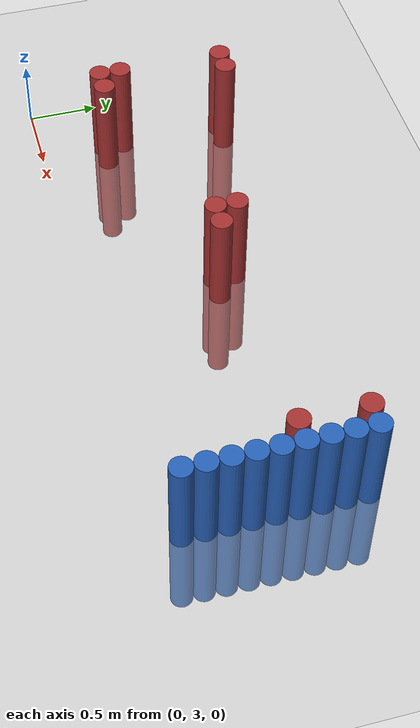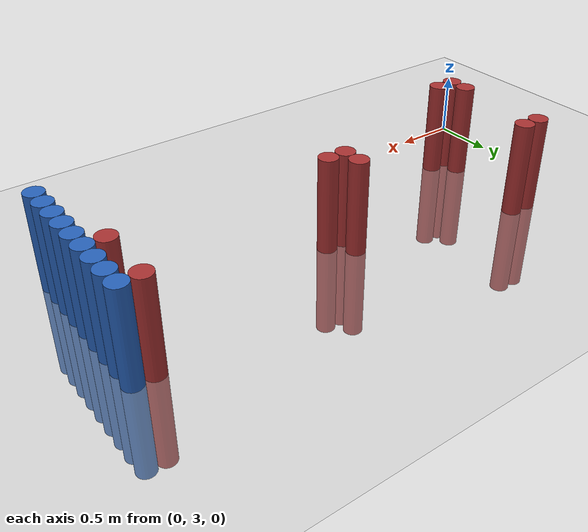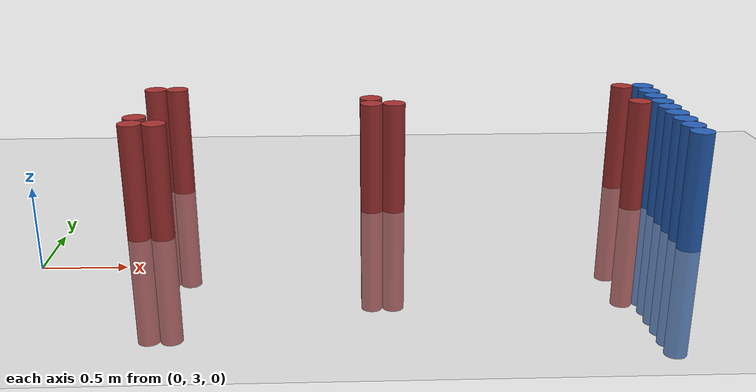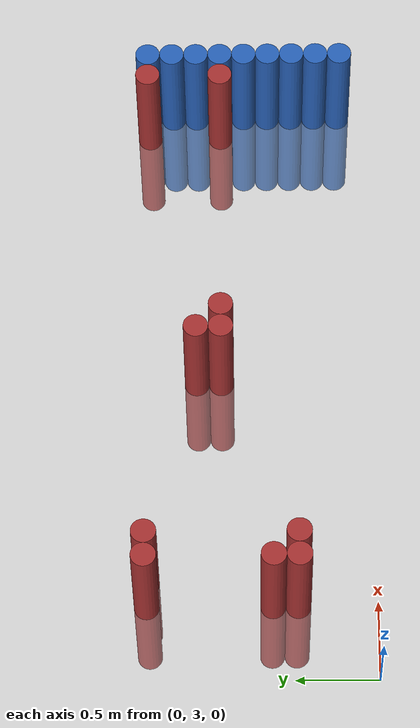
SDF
<sdf version="1.6">
 <world name="default">
  <model name="ground_plane">
   <static>1</static>
   <link name="link">
    <collision name="collision">
     <geometry><plane><normal>0 0 1</normal><size>100 100</size></plane></geometry>
     <surface><friction><ode><mu>100</mu><mu2>50</mu2></ode></friction></surface>
    </collision>
    <visual name="visual">
     <cast_shadows>0</cast_shadows>
     <geometry><plane><normal>0 0 1</normal><size>100 100</size></plane></geometry>
     <material>
      <script><uri>file://media/materials/scripts/gazebo.material</uri><name>Gazebo/Grey</name></script>
     </material>
    </visual>
   </link>
  </model>
  <model name="unit_cylinder_158">
   <static>1</static>
   <pose>3.925000 3.325000 0.000000 0.000000 0.000000 0.000000</pose>
   <link name="link">
    <inertial>
     <mass>1</mass>
     <inertia><ixx>0.145833</ixx><ixy>0</ixy><ixz>0</ixz><iyy>0.145833</iyy><iyz>0</iyz><izz>0.125</izz></inertia>
    </inertial>
    <collision name="collision">
     <geometry><cylinder><radius>0.075000</radius><length>1.5</length></cylinder></geometry>
    </collision>
    <visual name="visual">
     <geometry><cylinder><radius>0.075000</radius><length>1.5</length></cylinder></geometry>
     <material>
      <ambient>0.152000 0.379000 0.720000 1</ambient>
      <diffuse>0.152000 0.379000 0.720000 1</diffuse>
     </material>
     <material>
      <script><name>Gazebo/Grey</name><uri>file://media/materials/scripts/gazebo.material</uri></script>
     </material>
    </visual>
   </link>
  </model>
  <model name="unit_cylinder_160">
   <static>1</static>
   <pose>3.925000 3.475000 0.000000 0.000000 0.000000 0.000000</pose>
   <link name="link">
    <inertial>
     <mass>1</mass>
     <inertia><ixx>0.145833</ixx><ixy>0</ixy><ixz>0</ixz><iyy>0.145833</iyy><iyz>0</iyz><izz>0.125</izz></inertia>
    </inertial>
    <collision name="collision">
     <geometry><cylinder><radius>0.075000</radius><length>1.5</length></cylinder></geometry>
    </collision>
    <visual name="visual">
     <geometry><cylinder><radius>0.075000</radius><length>1.5</length></cylinder></geometry>
     <material>
      <ambient>0.152000 0.379000 0.720000 1</ambient>
      <diffuse>0.152000 0.379000 0.720000 1</diffuse>
     </material>
     <material>
      <script><name>Gazebo/Grey</name><uri>file://media/materials/scripts/gazebo.material</uri></script>
     </material>
    </visual>
   </link>
  </model>
  <model name="unit_cylinder_162">
   <static>1</static>
   <pose>3.925000 3.625000 0.000000 0.000000 0.000000 0.000000</pose>
   <link name="link">
    <inertial>
     <mass>1</mass>
     <inertia><ixx>0.145833</ixx><ixy>0</ixy><ixz>0</ixz><iyy>0.145833</iyy><iyz>0</iyz><izz>0.125</izz></inertia>
    </inertial>
    <collision name="collision">
     <geometry><cylinder><radius>0.075000</radius><length>1.5</length></cylinder></geometry>
    </collision>
    <visual name="visual">
     <geometry><cylinder><radius>0.075000</radius><length>1.5</length></cylinder></geometry>
     <material>
      <ambient>0.152000 0.379000 0.720000 1</ambient>
      <diffuse>0.152000 0.379000 0.720000 1</diffuse>
     </material>
     <material>
      <script><name>Gazebo/Grey</name><uri>file://media/materials/scripts/gazebo.material</uri></script>
     </material>
    </visual>
   </link>
  </model>
  <model name="unit_cylinder_164">
   <static>1</static>
   <pose>3.925000 3.775000 0.000000 0.000000 0.000000 0.000000</pose>
   <link name="link">
    <inertial>
     <mass>1</mass>
     <inertia><ixx>0.145833</ixx><ixy>0</ixy><ixz>0</ixz><iyy>0.145833</iyy><iyz>0</iyz><izz>0.125</izz></inertia>
    </inertial>
    <collision name="collision">
     <geometry><cylinder><radius>0.075000</radius><length>1.5</length></cylinder></geometry>
    </collision>
    <visual name="visual">
     <geometry><cylinder><radius>0.075000</radius><length>1.5</length></cylinder></geometry>
     <material>
      <ambient>0.152000 0.379000 0.720000 1</ambient>
      <diffuse>0.152000 0.379000 0.720000 1</diffuse>
     </material>
     <material>
      <script><name>Gazebo/Grey</name><uri>file://media/materials/scripts/gazebo.material</uri></script>
     </material>
    </visual>
   </link>
  </model>
  <model name="unit_cylinder_166">
   <static>1</static>
   <pose>3.925000 3.925000 0.000000 0.000000 0.000000 0.000000</pose>
   <link name="link">
    <inertial>
     <mass>1</mass>
     <inertia><ixx>0.145833</ixx><ixy>0</ixy><ixz>0</ixz><iyy>0.145833</iyy><iyz>0</iyz><izz>0.125</izz></inertia>
    </inertial>
    <collision name="collision">
     <geometry><cylinder><radius>0.075000</radius><length>1.5</length></cylinder></geometry>
    </collision>
    <visual name="visual">
     <geometry><cylinder><radius>0.075000</radius><length>1.5</length></cylinder></geometry>
     <material>
      <ambient>0.152000 0.379000 0.720000 1</ambient>
      <diffuse>0.152000 0.379000 0.720000 1</diffuse>
     </material>
     <material>
      <script><name>Gazebo/Grey</name><uri>file://media/materials/scripts/gazebo.material</uri></script>
     </material>
    </visual>
   </link>
  </model>
  <model name="unit_cylinder_168">
   <static>1</static>
   <pose>3.925000 4.075000 0.000000 0.000000 0.000000 0.000000</pose>
   <link name="link">
    <inertial>
     <mass>1</mass>
     <inertia><ixx>0.145833</ixx><ixy>0</ixy><ixz>0</ixz><iyy>0.145833</iyy><iyz>0</iyz><izz>0.125</izz></inertia>
    </inertial>
    <collision name="collision">
     <geometry><cylinder><radius>0.075000</radius><length>1.5</length></cylinder></geometry>
    </collision>
    <visual name="visual">
     <geometry><cylinder><radius>0.075000</radius><length>1.5</length></cylinder></geometry>
     <material>
      <ambient>0.152000 0.379000 0.720000 1</ambient>
      <diffuse>0.152000 0.379000 0.720000 1</diffuse>
     </material>
     <material>
      <script><name>Gazebo/Grey</name><uri>file://media/materials/scripts/gazebo.material</uri></script>
     </material>
    </visual>
   </link>
  </model>
  <model name="unit_cylinder_170">
   <static>1</static>
   <pose>3.925000 4.225000 0.000000 0.000000 0.000000 0.000000</pose>
   <link name="link">
    <inertial>
     <mass>1</mass>
     <inertia><ixx>0.145833</ixx><ixy>0</ixy><ixz>0</ixz><iyy>0.145833</iyy><iyz>0</iyz><izz>0.125</izz></inertia>
    </inertial>
    <collision name="collision">
     <geometry><cylinder><radius>0.075000</radius><length>1.5</length></cylinder></geometry>
    </collision>
    <visual name="visual">
     <geometry><cylinder><radius>0.075000</radius><length>1.5</length></cylinder></geometry>
     <material>
      <ambient>0.152000 0.379000 0.720000 1</ambient>
      <diffuse>0.152000 0.379000 0.720000 1</diffuse>
     </material>
     <material>
      <script><name>Gazebo/Grey</name><uri>file://media/materials/scripts/gazebo.material</uri></script>
     </material>
    </visual>
   </link>
  </model>
  <model name="unit_cylinder_172">
   <static>1</static>
   <pose>3.925000 4.375000 0.000000 0.000000 0.000000 0.000000</pose>
   <link name="link">
    <inertial>
     <mass>1</mass>
     <inertia><ixx>0.145833</ixx><ixy>0</ixy><ixz>0</ixz><iyy>0.145833</iyy><iyz>0</iyz><izz>0.125</izz></inertia>
    </inertial>
    <collision name="collision">
     <geometry><cylinder><radius>0.075000</radius><length>1.5</length></cylinder></geometry>
    </collision>
    <visual name="visual">
     <geometry><cylinder><radius>0.075000</radius><length>1.5</length></cylinder></geometry>
     <material>
      <ambient>0.152000 0.379000 0.720000 1</ambient>
      <diffuse>0.152000 0.379000 0.720000 1</diffuse>
     </material>
     <material>
      <script><name>Gazebo/Grey</name><uri>file://media/materials/scripts/gazebo.material</uri></script>
     </material>
    </visual>
   </link>
  </model>
  <model name="unit_cylinder_324">
   <static>1</static>
   <pose>0.475000 3.475000 0.000000 0.000000 0.000000 0.000000</pose>
   <link name="link">
    <inertial>
     <mass>1</mass>
     <inertia><ixx>0.145833</ixx><ixy>0</ixy><ixz>0</ixz><iyy>0.145833</iyy><iyz>0</iyz><izz>0.125</izz></inertia>
    </inertial>
    <collision name="collision">
     <geometry><cylinder><radius>0.075000</radius><length>1.5</length></cylinder></geometry>
    </collision>
    <visual name="visual">
     <geometry><cylinder><radius>0.075000</radius><length>1.5</length></cylinder></geometry>
     <material>
      <ambient>0.648000 0.192000 0.192000 1</ambient>
      <diffuse>0.648000 0.192000 0.192000 1</diffuse>
     </material>
     <material>
      <script><name>Gazebo/Grey</name><uri>file://media/materials/scripts/gazebo.material</uri></script>
     </material>
    </visual>
   </link>
  </model>
  <model name="unit_cylinder_325">
   <static>1</static>
   <pose>0.475000 3.625000 0.000000 0.000000 0.000000 0.000000</pose>
   <link name="link">
    <inertial>
     <mass>1</mass>
     <inertia><ixx>0.145833</ixx><ixy>0</ixy><ixz>0</ixz><iyy>0.145833</iyy><iyz>0</iyz><izz>0.125</izz></inertia>
    </inertial>
    <collision name="collision">
     <geometry><cylinder><radius>0.075000</radius><length>1.5</length></cylinder></geometry>
    </collision>
    <visual name="visual">
     <geometry><cylinder><radius>0.075000</radius><length>1.5</length></cylinder></geometry>
     <material>
      <ambient>0.648000 0.192000 0.192000 1</ambient>
      <diffuse>0.648000 0.192000 0.192000 1</diffuse>
     </material>
     <material>
      <script><name>Gazebo/Grey</name><uri>file://media/materials/scripts/gazebo.material</uri></script>
     </material>
    </visual>
   </link>
  </model>
  <model name="unit_cylinder_326">
   <static>1</static>
   <pose>0.475000 4.375000 0.000000 0.000000 0.000000 0.000000</pose>
   <link name="link">
    <inertial>
     <mass>1</mass>
     <inertia><ixx>0.145833</ixx><ixy>0</ixy><ixz>0</ixz><iyy>0.145833</iyy><iyz>0</iyz><izz>0.125</izz></inertia>
    </inertial>
    <collision name="collision">
     <geometry><cylinder><radius>0.075000</radius><length>1.5</length></cylinder></geometry>
    </collision>
    <visual name="visual">
     <geometry><cylinder><radius>0.075000</radius><length>1.5</length></cylinder></geometry>
     <material>
      <ambient>0.648000 0.192000 0.192000 1</ambient>
      <diffuse>0.648000 0.192000 0.192000 1</diffuse>
     </material>
     <material>
      <script><name>Gazebo/Grey</name><uri>file://media/materials/scripts/gazebo.material</uri></script>
     </material>
    </visual>
   </link>
  </model>
  <model name="unit_cylinder_328">
   <static>1</static>
   <pose>0.625000 3.475000 0.000000 0.000000 0.000000 0.000000</pose>
   <link name="link">
    <inertial>
     <mass>1</mass>
     <inertia><ixx>0.145833</ixx><ixy>0</ixy><ixz>0</ixz><iyy>0.145833</iyy><iyz>0</iyz><izz>0.125</izz></inertia>
    </inertial>
    <collision name="collision">
     <geometry><cylinder><radius>0.075000</radius><length>1.5</length></cylinder></geometry>
    </collision>
    <visual name="visual">
     <geometry><cylinder><radius>0.075000</radius><length>1.5</length></cylinder></geometry>
     <material>
      <ambient>0.648000 0.192000 0.192000 1</ambient>
      <diffuse>0.648000 0.192000 0.192000 1</diffuse>
     </material>
     <material>
      <script><name>Gazebo/Grey</name><uri>file://media/materials/scripts/gazebo.material</uri></script>
     </material>
    </visual>
   </link>
  </model>
  <model name="unit_cylinder_329">
   <static>1</static>
   <pose>0.625000 4.375000 0.000000 0.000000 0.000000 0.000000</pose>
   <link name="link">
    <inertial>
     <mass>1</mass>
     <inertia><ixx>0.145833</ixx><ixy>0</ixy><ixz>0</ixz><iyy>0.145833</iyy><iyz>0</iyz><izz>0.125</izz></inertia>
    </inertial>
    <collision name="collision">
     <geometry><cylinder><radius>0.075000</radius><length>1.5</length></cylinder></geometry>
    </collision>
    <visual name="visual">
     <geometry><cylinder><radius>0.075000</radius><length>1.5</length></cylinder></geometry>
     <material>
      <ambient>0.648000 0.192000 0.192000 1</ambient>
      <diffuse>0.648000 0.192000 0.192000 1</diffuse>
     </material>
     <material>
      <script><name>Gazebo/Grey</name><uri>file://media/materials/scripts/gazebo.material</uri></script>
     </material>
    </visual>
   </link>
  </model>
  <model name="unit_cylinder_351">
   <static>1</static>
   <pose>1.975000 3.925000 0.000000 0.000000 0.000000 0.000000</pose>
   <link name="link">
    <inertial>
     <mass>1</mass>
     <inertia><ixx>0.145833</ixx><ixy>0</ixy><ixz>0</ixz><iyy>0.145833</iyy><iyz>0</iyz><izz>0.125</izz></inertia>
    </inertial>
    <collision name="collision">
     <geometry><cylinder><radius>0.075000</radius><length>1.5</length></cylinder></geometry>
    </collision>
    <visual name="visual">
     <geometry><cylinder><radius>0.075000</radius><length>1.5</length></cylinder></geometry>
     <material>
      <ambient>0.648000 0.192000 0.192000 1</ambient>
      <diffuse>0.648000 0.192000 0.192000 1</diffuse>
     </material>
     <material>
      <script><name>Gazebo/Grey</name><uri>file://media/materials/scripts/gazebo.material</uri></script>
     </material>
    </visual>
   </link>
  </model>
  <model name="unit_cylinder_352">
   <static>1</static>
   <pose>1.975000 4.075000 0.000000 0.000000 0.000000 0.000000</pose>
   <link name="link">
    <inertial>
     <mass>1</mass>
     <inertia><ixx>0.145833</ixx><ixy>0</ixy><ixz>0</ixz><iyy>0.145833</iyy><iyz>0</iyz><izz>0.125</izz></inertia>
    </inertial>
    <collision name="collision">
     <geometry><cylinder><radius>0.075000</radius><length>1.5</length></cylinder></geometry>
    </collision>
    <visual name="visual">
     <geometry><cylinder><radius>0.075000</radius><length>1.5</length></cylinder></geometry>
     <material>
      <ambient>0.648000 0.192000 0.192000 1</ambient>
      <diffuse>0.648000 0.192000 0.192000 1</diffuse>
     </material>
     <material>
      <script><name>Gazebo/Grey</name><uri>file://media/materials/scripts/gazebo.material</uri></script>
     </material>
    </visual>
   </link>
  </model>
  <model name="unit_cylinder_355">
   <static>1</static>
   <pose>2.125000 3.925000 0.000000 0.000000 0.000000 0.000000</pose>
   <link name="link">
    <inertial>
     <mass>1</mass>
     <inertia><ixx>0.145833</ixx><ixy>0</ixy><ixz>0</ixz><iyy>0.145833</iyy><iyz>0</iyz><izz>0.125</izz></inertia>
    </inertial>
    <collision name="collision">
     <geometry><cylinder><radius>0.075000</radius><length>1.5</length></cylinder></geometry>
    </collision>
    <visual name="visual">
     <geometry><cylinder><radius>0.075000</radius><length>1.5</length></cylinder></geometry>
     <material>
      <ambient>0.648000 0.192000 0.192000 1</ambient>
      <diffuse>0.648000 0.192000 0.192000 1</diffuse>
     </material>
     <material>
      <script><name>Gazebo/Grey</name><uri>file://media/materials/scripts/gazebo.material</uri></script>
     </material>
    </visual>
   </link>
  </model>
  <model name="unit_cylinder_381">
   <static>1</static>
   <pose>3.775000 3.925000 0.000000 0.000000 0.000000 0.000000</pose>
   <link name="link">
    <inertial>
     <mass>1</mass>
     <inertia><ixx>0.145833</ixx><ixy>0</ixy><ixz>0</ixz><iyy>0.145833</iyy><iyz>0</iyz><izz>0.125</izz></inertia>
    </inertial>
    <collision name="collision">
     <geometry><cylinder><radius>0.075000</radius><length>1.5</length></cylinder></geometry>
    </collision>
    <visual name="visual">
     <geometry><cylinder><radius>0.075000</radius><length>1.5</length></cylinder></geometry>
     <material>
      <ambient>0.648000 0.192000 0.192000 1</ambient>
      <diffuse>0.648000 0.192000 0.192000 1</diffuse>
     </material>
     <material>
      <script><name>Gazebo/Grey</name><uri>file://media/materials/scripts/gazebo.material</uri></script>
     </material>
    </visual>
   </link>
  </model>
  <model name="unit_cylinder_382">
   <static>1</static>
   <pose>3.775000 4.375000 0.000000 0.000000 0.000000 0.000000</pose>
   <link name="link">
    <inertial>
     <mass>1</mass>
     <inertia><ixx>0.145833</ixx><ixy>0</ixy><ixz>0</ixz><iyy>0.145833</iyy><iyz>0</iyz><izz>0.125</izz></inertia>
    </inertial>
    <collision name="collision">
     <geometry><cylinder><radius>0.075000</radius><length>1.5</length></cylinder></geometry>
    </collision>
    <visual name="visual">
     <geometry><cylinder><radius>0.075000</radius><length>1.5</length></cylinder></geometry>
     <material>
      <ambient>0.648000 0.192000 0.192000 1</ambient>
      <diffuse>0.648000 0.192000 0.192000 1</diffuse>
     </material>
     <material>
      <script><name>Gazebo/Grey</name><uri>file://media/materials/scripts/gazebo.material</uri></script>
     </material>
    </visual>
   </link>
  </model>
  <model name="unit_cylinder_419">
   <static>1</static>
   <pose>3.925000 3.175000 0.000000 0.000000 0.000000 0.000000</pose>
   <link name="link">
    <inertial>
     <mass>1</mass>
     <inertia><ixx>0.145833</ixx><ixy>0</ixy><ixz>0</ixz><iyy>0.145833</iyy><iyz>0</iyz><izz>0.125</izz></inertia>
    </inertial>
    <collision name="collision">
     <geometry><cylinder><radius>0.075000</radius><length>1.5</length></cylinder></geometry>
    </collision>
    <visual name="visual">
     <geometry><cylinder><radius>0.075000</radius><length>1.5</length></cylinder></geometry>
     <material>
      <ambient>0.152000 0.379000 0.720000 1</ambient>
      <diffuse>0.152000 0.379000 0.720000 1</diffuse>
     </material>
     <material>
      <script><name>Gazebo/Grey</name><uri>file://media/materials/scripts/gazebo.material</uri></script>
     </material>
    </visual>
   </link>
  </model>
  <model name="unit_cylinder_420">
   <static>1</static>
   <pose>3.925000 3.325000 0.000000 0.000000 0.000000 0.000000</pose>
   <link name="link">
    <inertial>
     <mass>1</mass>
     <inertia><ixx>0.145833</ixx><ixy>0</ixy><ixz>0</ixz><iyy>0.145833</iyy><iyz>0</iyz><izz>0.125</izz></inertia>
    </inertial>
    <collision name="collision">
     <geometry><cylinder><radius>0.075000</radius><length>1.5</length></cylinder></geometry>
    </collision>
    <visual name="visual">
     <geometry><cylinder><radius>0.075000</radius><length>1.5</length></cylinder></geometry>
     <material>
      <ambient>0.152000 0.379000 0.720000 1</ambient>
      <diffuse>0.152000 0.379000 0.720000 1</diffuse>
     </material>
     <material>
      <script><name>Gazebo/Grey</name><uri>file://media/materials/scripts/gazebo.material</uri></script>
     </material>
    </visual>
   </link>
  </model>
  <model name="unit_cylinder_421">
   <static>1</static>
   <pose>3.925000 3.475000 0.000000 0.000000 0.000000 0.000000</pose>
   <link name="link">
    <inertial>
     <mass>1</mass>
     <inertia><ixx>0.145833</ixx><ixy>0</ixy><ixz>0</ixz><iyy>0.145833</iyy><iyz>0</iyz><izz>0.125</izz></inertia>
    </inertial>
    <collision name="collision">
     <geometry><cylinder><radius>0.075000</radius><length>1.5</length></cylinder></geometry>
    </collision>
    <visual name="visual">
     <geometry><cylinder><radius>0.075000</radius><length>1.5</length></cylinder></geometry>
     <material>
      <ambient>0.152000 0.379000 0.720000 1</ambient>
      <diffuse>0.152000 0.379000 0.720000 1</diffuse>
     </material>
     <material>
      <script><name>Gazebo/Grey</name><uri>file://media/materials/scripts/gazebo.material</uri></script>
     </material>
    </visual>
   </link>
  </model>
  <model name="unit_cylinder_422">
   <static>1</static>
   <pose>3.925000 3.625000 0.000000 0.000000 0.000000 0.000000</pose>
   <link name="link">
    <inertial>
     <mass>1</mass>
     <inertia><ixx>0.145833</ixx><ixy>0</ixy><ixz>0</ixz><iyy>0.145833</iyy><iyz>0</iyz><izz>0.125</izz></inertia>
    </inertial>
    <collision name="collision">
     <geometry><cylinder><radius>0.075000</radius><length>1.5</length></cylinder></geometry>
    </collision>
    <visual name="visual">
     <geometry><cylinder><radius>0.075000</radius><length>1.5</length></cylinder></geometry>
     <material>
      <ambient>0.152000 0.379000 0.720000 1</ambient>
      <diffuse>0.152000 0.379000 0.720000 1</diffuse>
     </material>
     <material>
      <script><name>Gazebo/Grey</name><uri>file://media/materials/scripts/gazebo.material</uri></script>
     </material>
    </visual>
   </link>
  </model>
  <model name="unit_cylinder_423">
   <static>1</static>
   <pose>3.925000 3.775000 0.000000 0.000000 0.000000 0.000000</pose>
   <link name="link">
    <inertial>
     <mass>1</mass>
     <inertia><ixx>0.145833</ixx><ixy>0</ixy><ixz>0</ixz><iyy>0.145833</iyy><iyz>0</iyz><izz>0.125</izz></inertia>
    </inertial>
    <collision name="collision">
     <geometry><cylinder><radius>0.075000</radius><length>1.5</length></cylinder></geometry>
    </collision>
    <visual name="visual">
     <geometry><cylinder><radius>0.075000</radius><length>1.5</length></cylinder></geometry>
     <material>
      <ambient>0.152000 0.379000 0.720000 1</ambient>
      <diffuse>0.152000 0.379000 0.720000 1</diffuse>
     </material>
     <material>
      <script><name>Gazebo/Grey</name><uri>file://media/materials/scripts/gazebo.material</uri></script>
     </material>
    </visual>
   </link>
  </model>
  <model name="unit_cylinder_424">
   <static>1</static>
   <pose>3.925000 3.925000 0.000000 0.000000 0.000000 0.000000</pose>
   <link name="link">
    <inertial>
     <mass>1</mass>
     <inertia><ixx>0.145833</ixx><ixy>0</ixy><ixz>0</ixz><iyy>0.145833</iyy><iyz>0</iyz><izz>0.125</izz></inertia>
    </inertial>
    <collision name="collision">
     <geometry><cylinder><radius>0.075000</radius><length>1.5</length></cylinder></geometry>
    </collision>
    <visual name="visual">
     <geometry><cylinder><radius>0.075000</radius><length>1.5</length></cylinder></geometry>
     <material>
      <ambient>0.152000 0.379000 0.720000 1</ambient>
      <diffuse>0.152000 0.379000 0.720000 1</diffuse>
     </material>
     <material>
      <script><name>Gazebo/Grey</name><uri>file://media/materials/scripts/gazebo.material</uri></script>
     </material>
    </visual>
   </link>
  </model>
  <model name="unit_cylinder_425">
   <static>1</static>
   <pose>3.925000 4.075000 0.000000 0.000000 0.000000 0.000000</pose>
   <link name="link">
    <inertial>
     <mass>1</mass>
     <inertia><ixx>0.145833</ixx><ixy>0</ixy><ixz>0</ixz><iyy>0.145833</iyy><iyz>0</iyz><izz>0.125</izz></inertia>
    </inertial>
    <collision name="collision">
     <geometry><cylinder><radius>0.075000</radius><length>1.5</length></cylinder></geometry>
    </collision>
    <visual name="visual">
     <geometry><cylinder><radius>0.075000</radius><length>1.5</length></cylinder></geometry>
     <material>
      <ambient>0.152000 0.379000 0.720000 1</ambient>
      <diffuse>0.152000 0.379000 0.720000 1</diffuse>
     </material>
     <material>
      <script><name>Gazebo/Grey</name><uri>file://media/materials/scripts/gazebo.material</uri></script>
     </material>
    </visual>
   </link>
  </model>
  <model name="unit_cylinder_426">
   <static>1</static>
   <pose>3.925000 4.225000 0.000000 0.000000 0.000000 0.000000</pose>
   <link name="link">
    <inertial>
     <mass>1</mass>
     <inertia><ixx>0.145833</ixx><ixy>0</ixy><ixz>0</ixz><iyy>0.145833</iyy><iyz>0</iyz><izz>0.125</izz></inertia>
    </inertial>
    <collision name="collision">
     <geometry><cylinder><radius>0.075000</radius><length>1.5</length></cylinder></geometry>
    </collision>
    <visual name="visual">
     <geometry><cylinder><radius>0.075000</radius><length>1.5</length></cylinder></geometry>
     <material>
      <ambient>0.152000 0.379000 0.720000 1</ambient>
      <diffuse>0.152000 0.379000 0.720000 1</diffuse>
     </material>
     <material>
      <script><name>Gazebo/Grey</name><uri>file://media/materials/scripts/gazebo.material</uri></script>
     </material>
    </visual>
   </link>
  </model>
  <model name="unit_cylinder_427">
   <static>1</static>
   <pose>3.925000 4.375000 0.000000 0.000000 0.000000 0.000000</pose>
   <link name="link">
    <inertial>
     <mass>1</mass>
     <inertia><ixx>0.145833</ixx><ixy>0</ixy><ixz>0</ixz><iyy>0.145833</iyy><iyz>0</iyz><izz>0.125</izz></inertia>
    </inertial>
    <collision name="collision">
     <geometry><cylinder><radius>0.075000</radius><length>1.5</length></cylinder></geometry>
    </collision>
    <visual name="visual">
     <geometry><cylinder><radius>0.075000</radius><length>1.5</length></cylinder></geometry>
     <material>
      <ambient>0.152000 0.379000 0.720000 1</ambient>
      <diffuse>0.152000 0.379000 0.720000 1</diffuse>
     </material>
     <material>
      <script><name>Gazebo/Grey</name><uri>file://media/materials/scripts/gazebo.material</uri></script>
     </material>
    </visual>
   </link>
  </model>
 </world>
</sdf>
